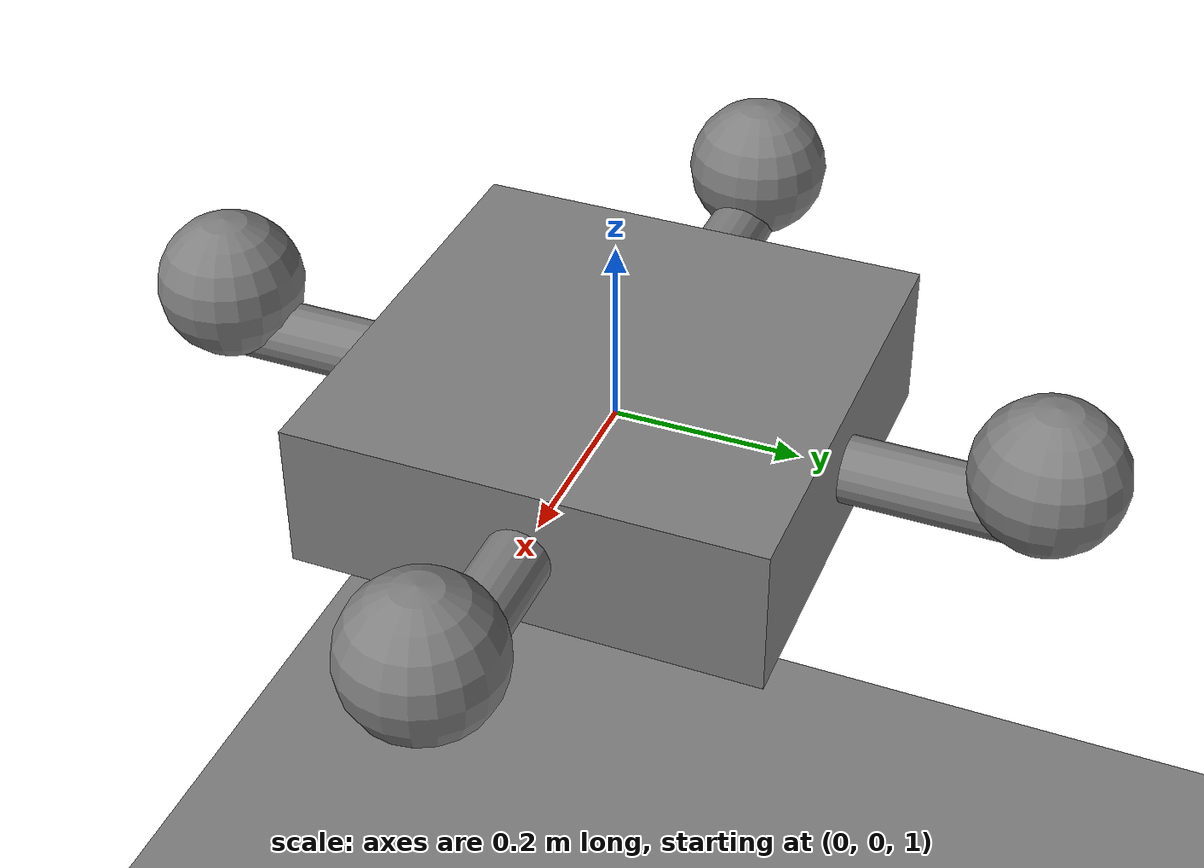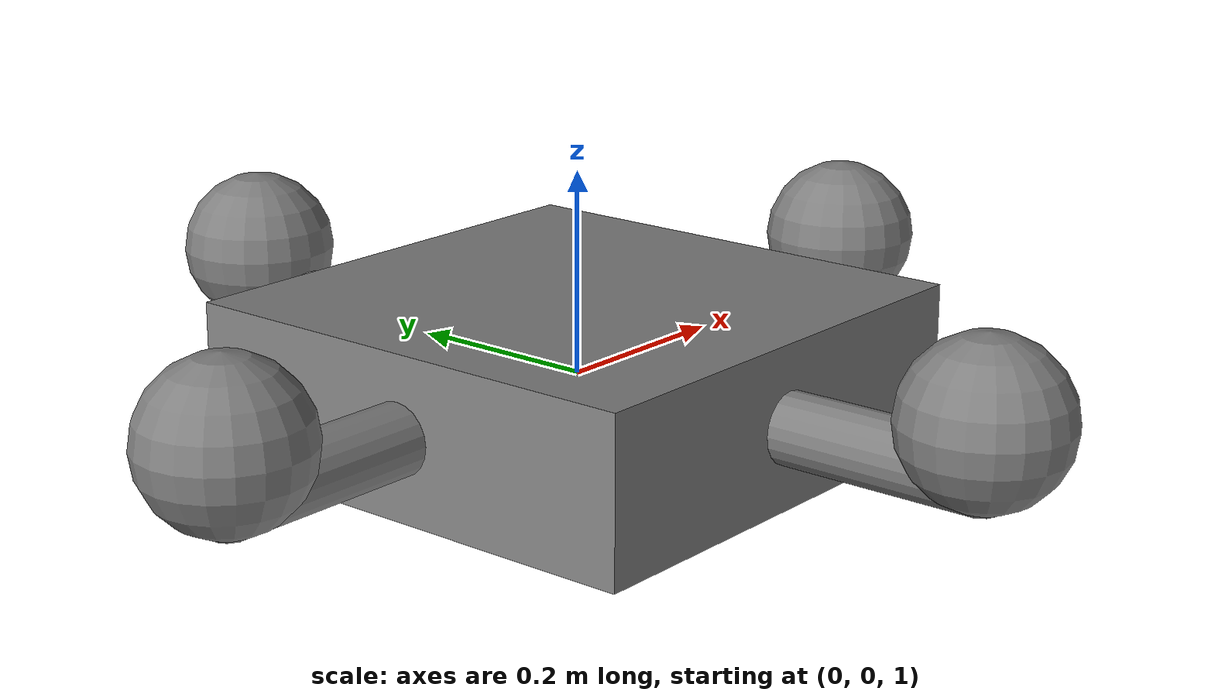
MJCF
<mujoco model="autonomous_drone">

    <compiler angle="degree" coordinate="local"/>

    <option timestep="0.002" gravity="0 0 -9.81"/>

    <visual>
        <headlight ambient="0.5 0.5 0.5"
                    diffuse="0.8 0.8 0.8"
                    specular="0.1 0.1 0.1"/>
    </visual>

    <worldbody>

        <!-- Ground -->
        <geom name="ground"
              type="plane"
              size="20 20 0.1"
              pos="0 0 0"/>

        <!-- Drone -->
        <body name="drone" pos="0 0 1">
		<freejoint name="drone_free"/>

            <!-- Main drone body -->
            <geom name="body"
                  type="box"
                  size="0.25 0.25 0.08"
                  mass="1.0"/>

            <!-- Four arms -->
            <geom name="arm_front"
                  type="capsule"
                  fromto="0 0 0 0.45 0 0"
                  size="0.035"/>

            <geom name="arm_back"
                  type="capsule"
                  fromto="0 0 0 -0.45 0 0"
                  size="0.035"/>

            <geom name="arm_left"
                  type="capsule"
                  fromto="0 0 0 0 0.45 0"
                  size="0.035"/>

            <geom name="arm_right"
                  type="capsule"
                  fromto="0 0 0 0 -0.45 0"
                  size="0.035"/>

            <!-- Rotor 1 -->
            <site name="rotor_1"
                  pos="0.45 0 0.05"
                  size="0.08"/>

            <!-- Rotor 2 -->
            <site name="rotor_2"
                  pos="-0.45 0 0.05"
                  size="0.08"/>

            <!-- Rotor 3 -->
            <site name="rotor_3"
                  pos="0 0.45 0.05"
                  size="0.08"/>

            <!-- Rotor 4 -->
            <site name="rotor_4"
                  pos="0 -0.45 0.05"
                  size="0.08"/>

        </body>

        <!-- Camera -->
        <camera name="main_camera"
                pos="6 -6 4"
                xyaxes="0.707 0.707 0 -0.25 0.25 0.935"/>

        <!-- Light -->
        <light name="sun"
               pos="0 0 8"
               dir="0 0 -1"/>

    </worldbody>

    <actuator>

        <motor name="motor_1"
               joint="drone_free"
               gear="0 0 1 0 0 0"/>

       <motor name="motor_2"
              joint="drone_free"
              gear="0 0 1 0 0 0"/>

       <motor name="motor_3"
               joint="drone_free"
               gear="0 0 1 0 0 0"/>

       <motor name="motor_4"
              joint="drone_free"
              gear="0 0 1 0 0 0"/>

     </actuator>

</mujoco>
